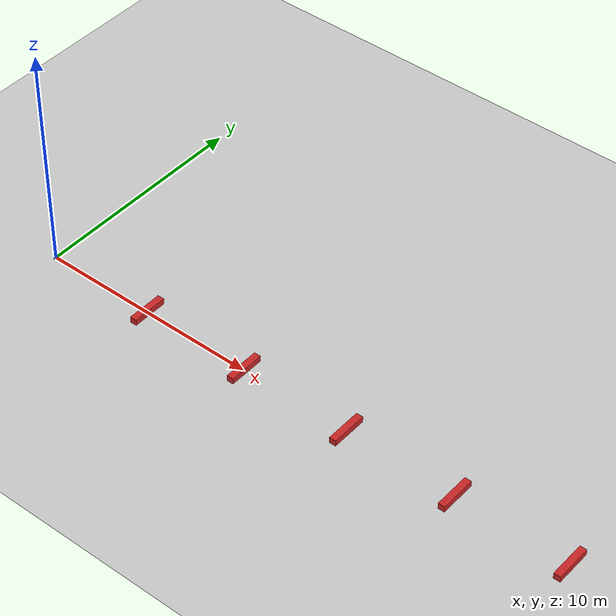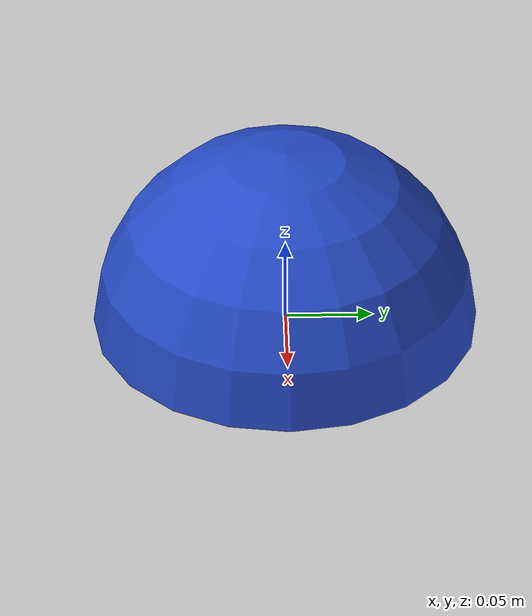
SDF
<?xml version="1.0"?>
<sdf version="1.6">
  <world name="default">

    <include>
      <uri>model://sun</uri>
    </include>
    <include>
      <uri>model://ground_plane</uri>
    </include>

    <include>
      <name>red_box1</name>
      <pose>5 0 0 0 0 0</pose>
      <uri>model://red_box</uri>
    </include>

    <include>
      <name>red_box2</name>
      <pose>10 0 0 0 0 0</pose>
      <uri>model://red_box</uri>
    </include>

    <include>
      <name>red_box3</name>
      <pose>15 0 0 0 0 0</pose>
      <uri>model://red_box</uri>
    </include>

    <include>
      <name>red_box4</name>
      <pose>20 0 0 0 0 0</pose>
      <uri>model://red_box</uri>
    </include>

    <include>
      <name>red_box5</name>
      <pose>25 0 0 0 0 0</pose>
      <uri>model://red_box</uri>
    </include>

    <model name="blue_ball">
        <pose>0 0 0 0 0 0</pose>
      <link name="link">
        <inertial>
          <pose>0 0 0 0 0 0</pose>
          <mass>10</mass>
          <inertia>
            <ixx>3.33341666667e+3</ixx>
            <ixy>0.0</ixy>
            <ixz>0.0</ixz>
            <iyy>3.33341666667e+3</iyy>
            <iyz>0.0</iyz>
            <izz>6.66666666667e+3</izz>
          </inertia>
        </inertial>
        <collision name="collision">
          <geometry>
            <sphere>
              <radius>.1</radius>
            </sphere>
          </geometry>
          <surface>
              <friction>
                <ode>
                  <mu>0.01</mu>
                  <mu2>0.01</mu2>
                </ode>
              </friction>
            </surface>
        </collision>

        <visual name="visual">
          <geometry>
            <sphere>
              <radius>.11</radius>
            </sphere>
          </geometry>
          <material>
              <script>
                <uri>file://media/materials/scripts/gazebo.material</uri>
                <name>Gazebo/Blue</name>
              </script>
            </material>
        </visual>
      </link>

    </model>

  <plugin name='gazebo_ros_state' filename='libgazebo_ros_state.so'>
    <ros>
        <namespace>/gazebo</namespace>
    </ros>
    <update_rate>15.0</update_rate>
  </plugin>

  </world>
</sdf>

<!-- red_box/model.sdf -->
<sdf version='1.6'>
  <model name='red_box'>
      <pose>0 5 0 0 -0 0</pose>
      <link name='link'>
        <inertial>
          <mass>0.5</mass>
          <inertia>
            <ixx>0.116667</ixx>
            <ixy>0</ixy>
            <ixz>0</ixz>
            <iyy>0.116667</iyy>
            <iyz>0</iyz>
            <izz>0.116667</izz>
          </inertia>
          <pose>0 0 0 0 -0 0</pose>
        </inertial>
        <collision name='collision'>
          <geometry>
            <box>
              <size>0.299996 1.599996 0.5</size>
            </box>
          </geometry>
                    <surface>
              <friction>
                <ode>
                  <mu>0.01</mu>
                  <mu2>0.01</mu2>
                </ode>
              </friction>
            </surface>
          <max_contacts>10</max_contacts>
        </collision>
        <visual name='visual'>
          <geometry>
            <box>
              <size>0.299996 1.599996 0.5</size>
            </box>
          </geometry>
          <material>
            <script>
              <name>Gazebo/Red</name>
              <uri>file://media/materials/scripts/gazebo.material</uri>
            </script>
          </material>
        </visual>
        <self_collide>0</self_collide>
        <enable_wind>0</enable_wind>
        <kinematic>0</kinematic>
      </link>
    </model>
    </sdf>
